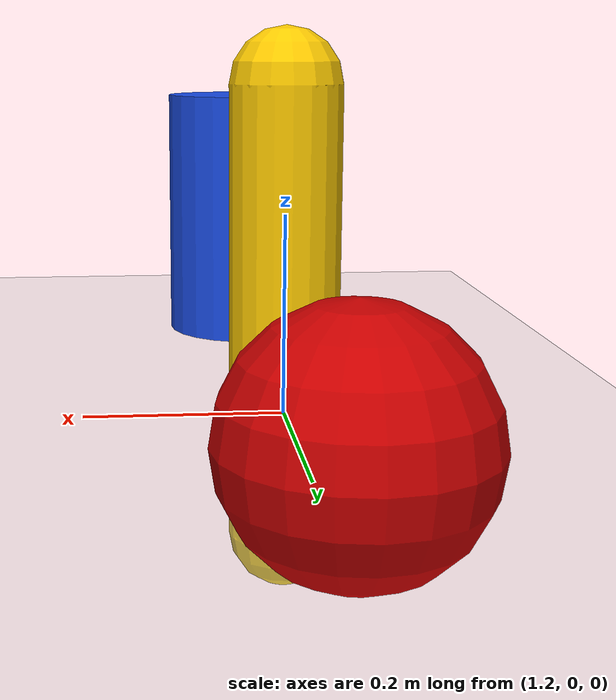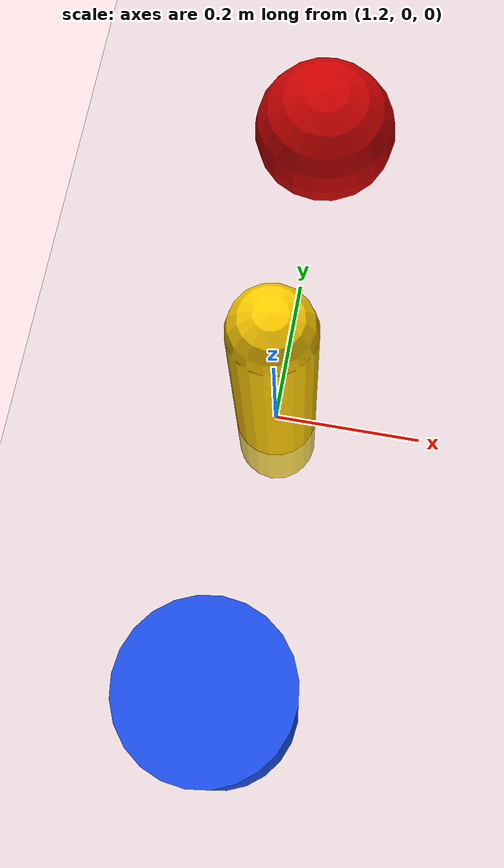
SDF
<?xml version="1.0" ?>
<sdf version="1.6">
  <world name="camera_world">

    <physics name="1ms" type="ignored">
      <max_step_size>0.001</max_step_size>
      <real_time_factor>1.0</real_time_factor>
    </physics>

    <!-- Physics -->
    <plugin
      filename="gz-sim-physics-system"
      name="gz::sim::systems::Physics">
    </plugin>

    <!-- User commands -->
    <plugin
      filename="gz-sim-user-commands-system"
      name="gz::sim::systems::UserCommands">
    </plugin>

    <!-- Scene broadcaster -->
    <plugin
      filename="gz-sim-scene-broadcaster-system"
      name="gz::sim::systems::SceneBroadcaster">
    </plugin>

    <!-- Sensors -->
    <plugin
      filename="gz-sim-sensors-system"
      name="gz::sim::systems::Sensors">
    </plugin>

    <!-- Ground -->
    <model name="ground_plane">
      <static>true</static>

      <link name="link">
        <collision name="collision">
          <geometry>
            <plane>
              <normal>0 0 1</normal>
              <size>100 100</size>
            </plane>
          </geometry>
        </collision>

        <visual name="visual">
          <geometry>
            <plane>
              <normal>0 0 1</normal>
              <size>100 100</size>
            </plane>
          </geometry>
        </visual>
      </link>
    </model>

    <!-- APPLE -->

    <model name="apple">
      <static>true</static>

      <pose>1.2 0.4 0.10 0 0 0</pose>

      <link name="link">

        <collision name="collision">
          <geometry>
            <sphere>
              <radius>0.10</radius>
            </sphere>
          </geometry>
        </collision>

        <visual name="visual">
          <geometry>
            <sphere>
              <radius>0.10</radius>
            </sphere>
          </geometry>

          <material>
            <ambient>0.8 0.0 0.0 1</ambient>
            <diffuse>0.8 0.0 0.0 1</diffuse>
          </material>
        </visual>

      </link>
    </model>

    <!-- BANANA -->

    <model name="banana">
      <static>true</static>

      <pose>1.2 0.0 0.10 0 0 0</pose>

      <link name="link">

        <collision name="collision">
          <geometry>
            <capsule>
              <radius>0.055</radius>
              <length>0.45</length>
            </capsule>
          </geometry>
        </collision>

        <visual name="visual">
          <geometry>
            <capsule>
              <radius>0.055</radius>
              <length>0.45</length>
            </capsule>
          </geometry>

          <material>
            <ambient>1.0 0.8 0.0 1</ambient>
            <diffuse>1.0 0.8 0.0 1</diffuse>
          </material>
        </visual>

      </link>
    </model>

    <!-- CUP -->

    <model name="cup">
      <static>true</static>

      <pose>1.2 -0.4 0.15 0 0 0</pose>

      <link name="link">

        <collision name="collision">
          <geometry>
            <cylinder>
              <radius>0.10</radius>
              <length>0.30</length>
            </cylinder>
          </geometry>
        </collision>

        <visual name="visual">
          <geometry>
            <cylinder>
              <radius>0.10</radius>
              <length>0.30</length>
            </cylinder>
          </geometry>

          <material>
            <ambient>0.1 0.3 0.9 1</ambient>
            <diffuse>0.1 0.3 0.9 1</diffuse>
          </material>
        </visual>

      </link>
    </model>

    <!-- Light -->
    <light type="directional" name="sun">
      <cast_shadows>true</cast_shadows>
      <pose>0 0 10 0 0 0</pose>
      <diffuse>0.8 0.8 0.8 1</diffuse>
      <specular>0.2 0.2 0.2 1</specular>
      <direction>-0.5 0.1 -0.9</direction>
    </light>

  </world>
</sdf>
